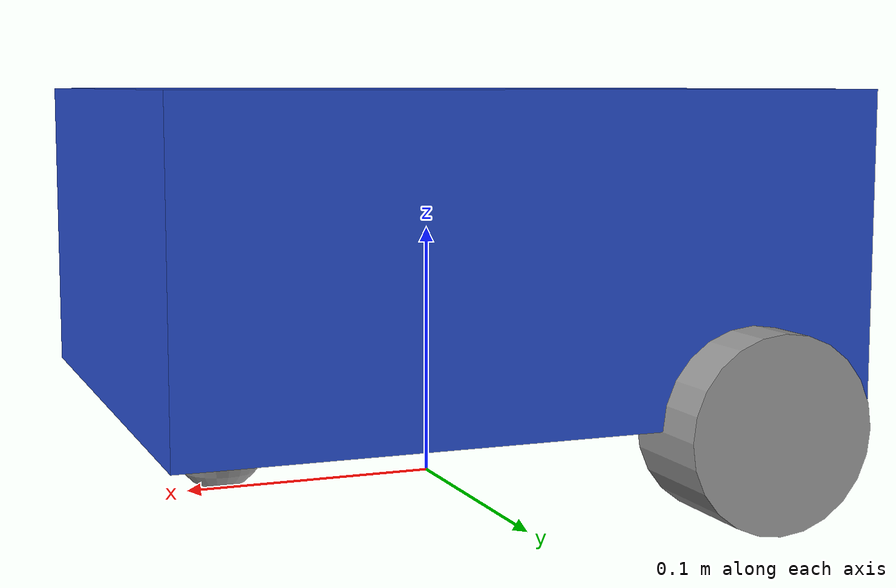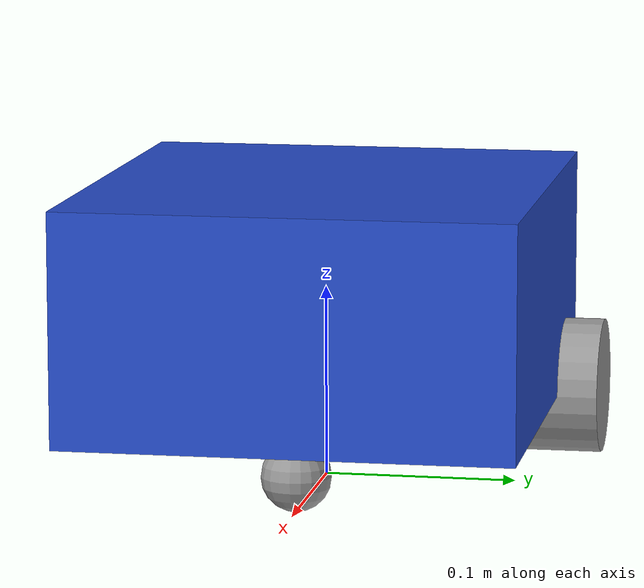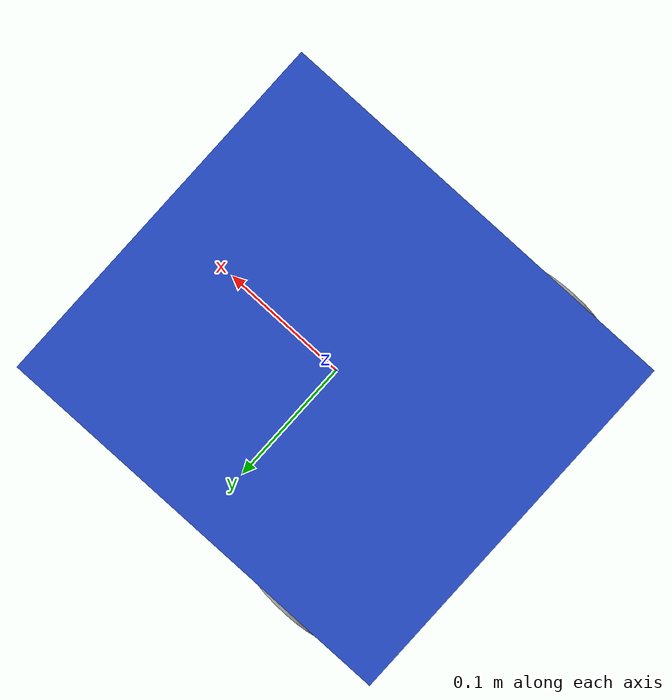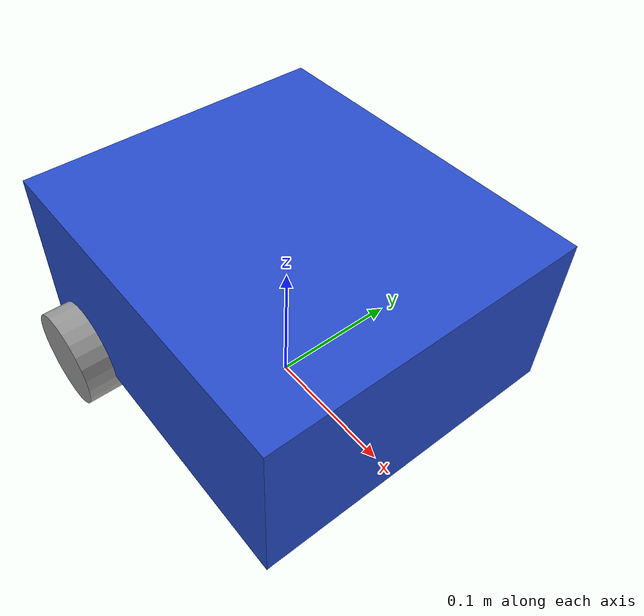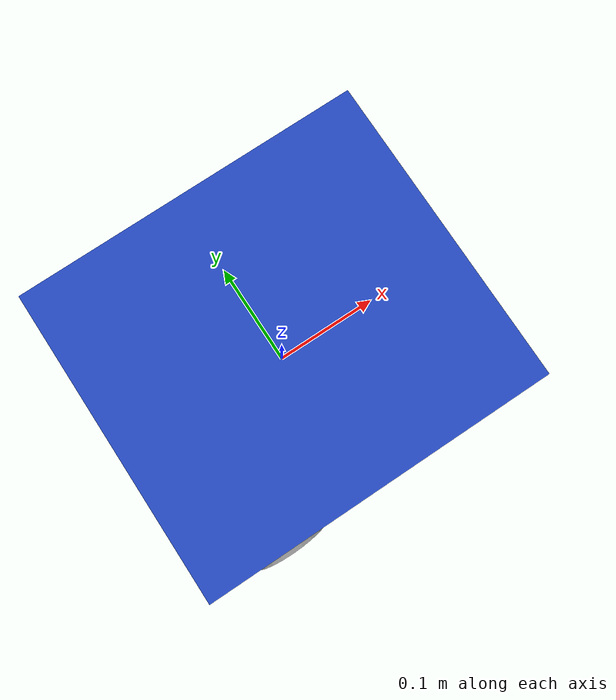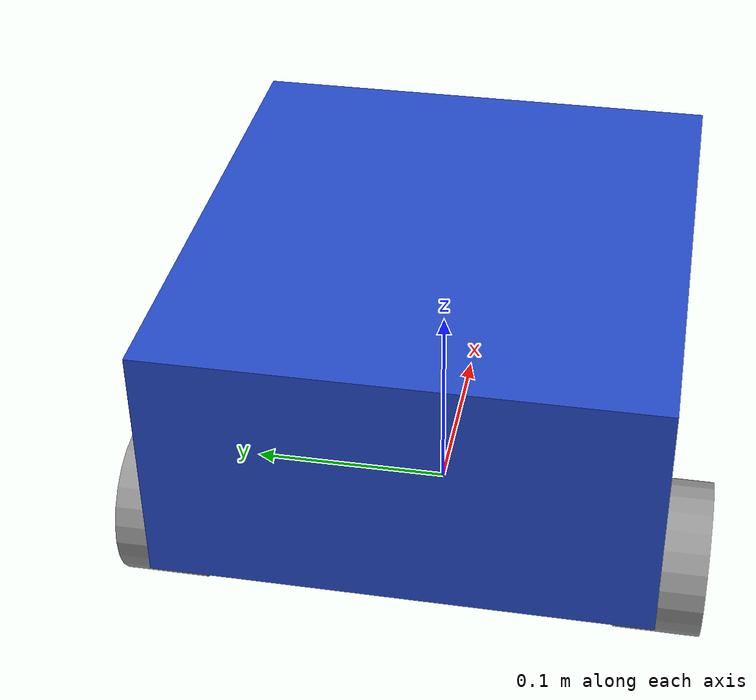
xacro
<?xml version="1.0"?>
<robot xmlns:xacro="http://www.ros.org/wiki/xacro">

    <!-- Robot body size -->
    <xacro:property name="base_length" value="0.261" />
    <xacro:property name="base_width" value="0.233" />
    <xacro:property name="base_height" value="0.120" />

    <!-- Wheel size and position -->
    <xacro:property name="wheel_radius" value="0.036" />
    <xacro:property name="wheel_length" value="0.040" />
    <xacro:property name="wheel_separation" value="0.235" />

    <!-- ROS front is +X. Put drive wheels near the front/motor side. -->
    <xacro:property name="wheel_from_front" value="0.050" />
    <xacro:property name="wheel_x_offset" value="${base_length / 2.0 - wheel_from_front}" />

    <link name="base_footprint" />

    <link name="base_link">
        <visual>
            <geometry>
                <box size="${base_length} ${base_width} ${base_height}" />
            </geometry>
            <origin xyz="0 0 ${base_height / 2.0}" rpy="0 0 0" />
            <material name="blue" />
        </visual>

        <collision>
            <geometry>
                <box size="${base_length} ${base_width} ${base_height}" />
            </geometry>
            <origin xyz="0 0 ${base_height / 2.0}" rpy="0 0 0" />
        </collision>

        <xacro:box_inertia
            m="5.0"
            x="${base_length}"
            y="${base_width}"
            z="${base_height}"
            o_xyz="0 0 ${base_height / 2.0}"
            o_rpy="0 0 0" />
    </link>

    <xacro:macro name="wheel_link" params="prefix">
        <link name="${prefix}_wheel_link">
            <visual>
                <geometry>
                    <cylinder radius="${wheel_radius}" length="${wheel_length}" />
                </geometry>
                <origin xyz="0 0 0" rpy="${pi / 2.0} 0 0" />
                <material name="grey" />
            </visual>

            <collision>
                <geometry>
                    <cylinder radius="${wheel_radius}" length="${wheel_length}" />
                </geometry>
                <origin xyz="0 0 0" rpy="${pi / 2.0} 0 0" />
            </collision>

            <xacro:cylinder_inertia
                m="1.0"
                r="${wheel_radius}"
                l="${wheel_length}"
                o_xyz="0 0 0"
                o_rpy="${pi / 2.0} 0 0" />
        </link>
    </xacro:macro>

    <xacro:wheel_link prefix="right" />
    <xacro:wheel_link prefix="left" />

    <link name="caster_wheel_link">
        <visual>
            <geometry>
                <sphere radius="${wheel_radius / 2.0}" />
            </geometry>
            <origin xyz="0 0 0" rpy="0 0 0" />
            <material name="grey" />
        </visual>

        <collision>
            <geometry>
                <sphere radius="${wheel_radius / 2.0}" />
            </geometry>
            <origin xyz="0 0 0" rpy="0 0 0" />
        </collision>

        <xacro:sphere_inertia
            m="0.5"
            r="${wheel_radius / 2.0}"
            o_xyz="0 0 0"
            o_rpy="0 0 0" />
    </link>

    <!-- base_footprint is the floor frame. base_link sits wheel_radius above floor. -->
    <joint name="base_joint" type="fixed">
        <parent link="base_footprint" />
        <child link="base_link" />
        <origin xyz="0 0 ${wheel_radius}" rpy="0 0 ${pi}" />
    </joint>

    <!-- Right wheel: negative Y -->
    <joint name="base_right_wheel_joint" type="continuous">
        <parent link="base_link" />
        <child link="right_wheel_link" />
        <origin xyz="${wheel_x_offset} ${-wheel_separation / 2.0} 0" rpy="0 0 ${pi}" />
        <axis xyz="0 1 0" />
    </joint>

    <!-- Left wheel: positive Y -->
    <joint name="base_left_wheel_joint" type="continuous">
        <parent link="base_link" />
        <child link="left_wheel_link" />
        <origin xyz="${wheel_x_offset} ${wheel_separation / 2.0} 0" rpy="0 0 ${pi}" />
        <axis xyz="0 1 0" />
    </joint>

    <!-- Caster wheel goes at the back, negative X -->
    <joint name="base_caster_wheel_joint" type="fixed">
        <parent link="base_link" />
        <child link="caster_wheel_link" />
        <origin xyz="${-base_length / 3.0} 0 ${-wheel_radius / 2.0}" rpy="0 0 0" />
    </joint>

</robot>
